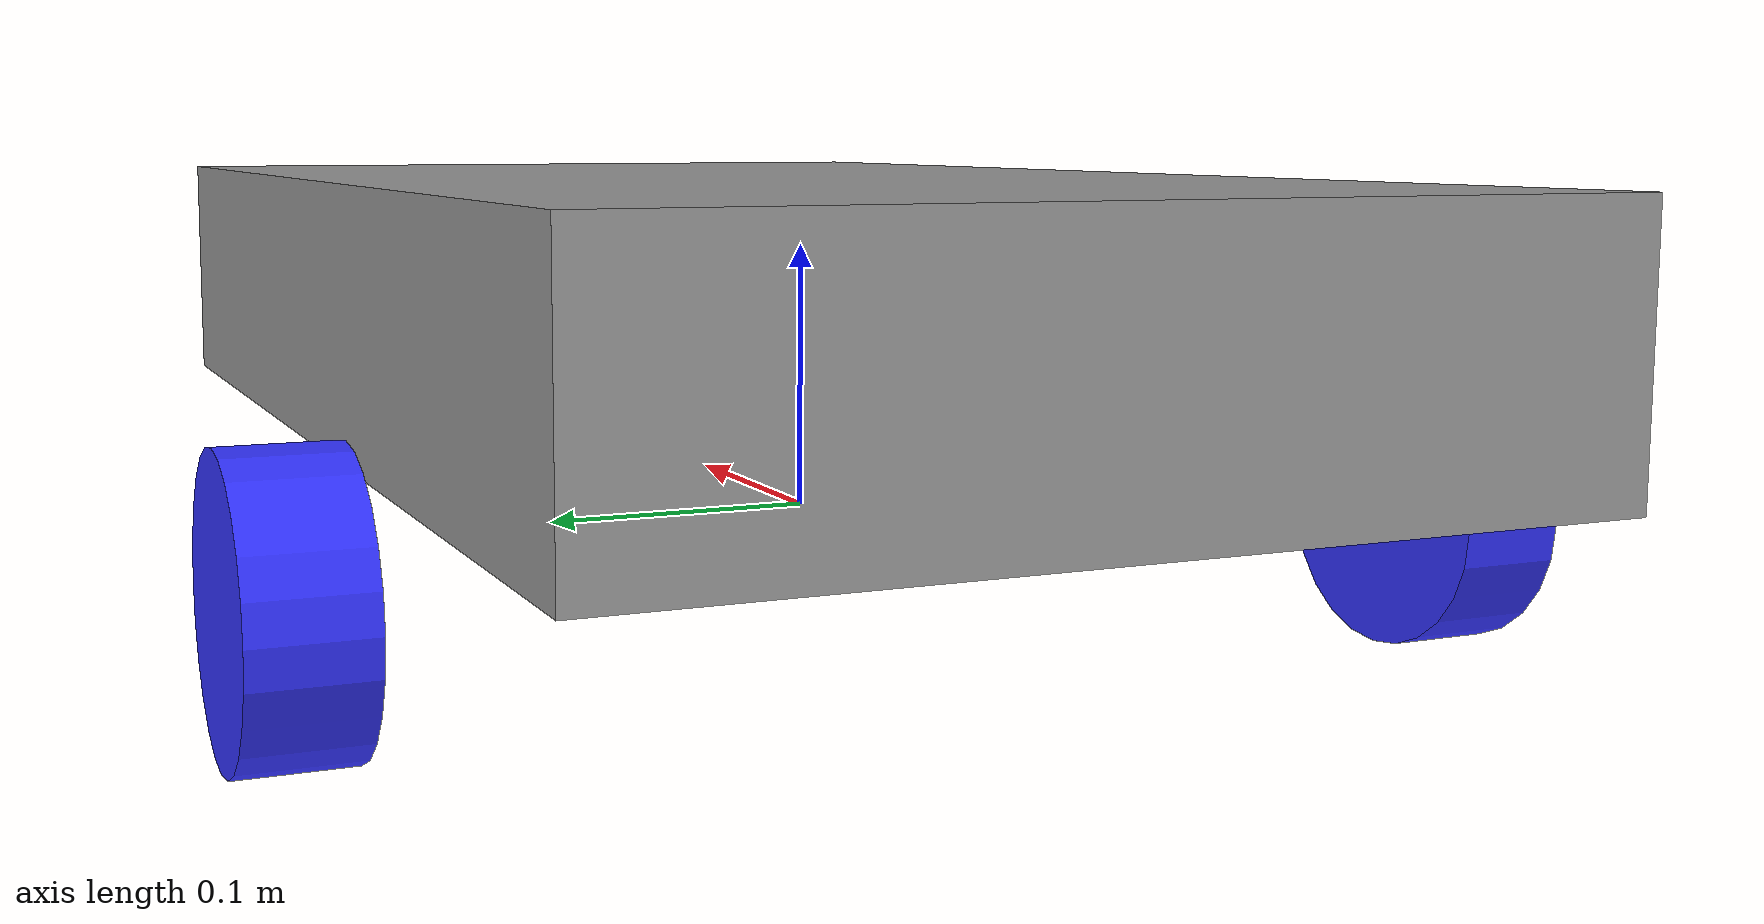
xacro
<?xml version="1.0"?>

<!-- Corpo base do robo, suas juntas e localização de sensores -->
<!-- Dimensões são em metros -->
<robot xmlns:xacro="http://www.ros.org/wiki/xacro">
    <xacro:include filename="materials.xacro"/>
    <xacro:include filename="inertials.xacro"/>

    <!-- Chassi -->
    <xacro:property name="chassi_x" value="0.6"/>
    <xacro:property name="chassi_y" value="0.35"/>
    <xacro:property name="chassi_z" value="0.1"/>
    <xacro:property name="chassi_massa" value="5.3"/>
    <xacro:property name="chassi_origem" value="0.15 0.0 0.075"/>
    <xacro:property name="chassi_joint_xyz" value="-0.1 0 0"/>

    <!-- Rodas trazeiras -->
    <xacro:property name="roda_raio" value="0.05"/>
    <xacro:property name="roda_comprimento" value="0.04"/>
    <xacro:property name="roda_massa" value="0.5"/>
    <xacro:property name="roda_y" value="0.215"/>
    <xacro:property name="roda_mu1" value="0.65"/>
    <xacro:property name="roda_mu2" value="0.65"/>

    <!-- Roda(as) de apio -->
    <xacro:property name="apoio_raio" value="0.05"/>
    <xacro:property name="apoio_massa" value="0.5"/>
    <xacro:property name="apoio_x" value="0.24"/>
    <xacro:property name="apoio_mu1" value="0.2"/>
    <xacro:property name="apoio_mu2" value="0.2"/>

    <link name="base_link"/>

    <!-- Chassi -->
    <joint name="junta_chassi" type="fixed">
        <parent link="base_link"/>
        <child link="chassi"/>
        <origin xyz="${chassi_joint_xyz}" rpy="0 0 0"/>
    </joint>

    <link name="chassi">
        <visual>
            <origin xyz="${chassi_origem}"/>
            <geometry>
                <box size="${chassi_x} ${chassi_y} ${chassi_z}"/>
            </geometry>
            <material name="gray"/>
        </visual>
        <collision>
            <origin xyz="${chassi_origem}"/>
            <geometry>
                <box size="${chassi_x} ${chassi_y} ${chassi_z}"/>
            </geometry>
        </collision>
        <xacro:inertial_box mass="${chassi_massa}" x="${chassi_x}" y="${chassi_y}" z="${chassi_z}">
            <origin xyz="${chassi_origem}" rpy="0 0 0"/>
        </xacro:inertial_box>
    </link>

    <!-- Roda Esquerda Traseira -->
    <joint name="roda_esquerda_joint" type="continuous">
        <parent link="chassi"/>
        <child link="roda_esquerda"/>
        <origin xyz="0 ${roda_y} 0" rpy="0 0 0"/>
        <axis xyz="0 1 0"/>
    </joint>

    <link name="roda_esquerda">
        <visual>
            <origin xyz="0 0 0" rpy="${pi/2} 0 0"/>
            <geometry><cylinder radius="${roda_raio}" length="${roda_comprimento}"/></geometry>
            <material name="blue"/>
        </visual>
        <collision>
            <origin xyz="0 0 0" rpy="${pi/2} 0 0"/>
            <geometry><cylinder radius="${roda_raio}" length="${roda_comprimento}"/></geometry>
        </collision>
        <xacro:inertial_cylinder mass="${roda_massa}" length="${roda_comprimento}" radius="${roda_raio}">
            <origin xyz="0 0 0" rpy="${pi/2} 0 0"/>
        </xacro:inertial_cylinder>
    </link>
    <gazebo reference="roda_esquerda">
        <mu1>${roda_mu1}</mu1>
        <mu2>${roda_mu2}</mu2>
    </gazebo>

    <!-- Roda Direita Traseira -->
    <joint name="roda_direita_joint" type="continuous">
        <parent link="chassi"/>
        <child link="roda_direita"/>
        <origin xyz="0 -${roda_y} 0" rpy="0 0 0"/>
        <axis xyz="0 1 0"/>
    </joint>

    <link name="roda_direita">
        <visual>
            <origin xyz="0 0 0" rpy="${pi/2} 0 0"/>
            <geometry><cylinder radius="${roda_raio}" length="${roda_comprimento}"/></geometry>
            <material name="blue"/>
        </visual>
        <collision>
            <origin xyz="0 0 0" rpy="${pi/2} 0 0"/>
            <geometry><cylinder radius="${roda_raio}" length="${roda_comprimento}"/></geometry>
        </collision>
        <xacro:inertial_cylinder mass="${roda_massa}" length="${roda_comprimento}" radius="${roda_raio}">
            <origin xyz="0 0 0" rpy="${pi/2} 0 0"/>
        </xacro:inertial_cylinder>
    </link>
    <gazebo reference="roda_direita">
        <mu1>${roda_mu1}</mu1>
        <mu2>${roda_mu2}</mu2>
    </gazebo>

    <!-- Rodas de Apoio -->
    <joint name="roda_frente_joint" type="fixed">
        <parent link="chassi"/>
        <child link="roda_frente"/>
        <origin xyz="${apoio_x} 0 0"/>
    </joint>

    <link name="roda_frente">

        <visual>
            <geometry>
                <sphere radius="${apoio_raio}"/>
            </geometry>
            <material name="black"/>
        </visual>

        <collision>
            <geometry>
                <sphere radius="${apoio_raio}"/>
            </geometry>
        </collision>

        <xacro:inertial_sphere mass="${apoio_massa}" radius="${apoio_raio}">
            <origin xyz="0 0 0" rpy="0 0 0"/>
        </xacro:inertial_sphere>

    </link>

    <gazebo reference="roda_frente">
        <self_collide>false</self_collide>
        <mu1>${apoio_mu1}</mu1>
        <mu2>${apoio_mu2}</mu2>
    </gazebo>

</robot>

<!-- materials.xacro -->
<!-- Cores para melhor visualização na simulação e no Rviz-->

<robot xmlns:xacro="http://www.ros.org/wiki/xacro">

    <material name="white">
        <color rgba="1 1 1 1"/>
    </material>

    <material name="blue">
        <color rgba="0.2 0.2 1 1"/>
    </material>

    <material name="black">
        <color rgba="0 0 0 1"/>
    </material>

    <material name="red">
        <color rgba="1 0.2 0.2 1"/>
    </material>

    <material name="gray">
        <color rgba="0.6 0.6 0.6 1"/>
    </material>

</robot>

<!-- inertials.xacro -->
<robot xmlns:xacro="http://www.ros.org/wiki/xacro" >

    <!-- Modelos obtidos pelo site https://en.wikipedia.org/wiki/List_of_moments_of_inertia -->

    <xacro:macro name="inertial_sphere" params="mass radius *origin">
        <inertial>
            <xacro:insert_block name="origin"/>
            <mass value="${mass}" />
            <inertia ixx="${(2/5) * mass * (radius*radius)}" ixy="0.0" ixz="0.0"
                    iyy="${(2/5) * mass * (radius*radius)}" iyz="0.0"
                    izz="${(2/5) * mass * (radius*radius)}" />
        </inertial>
    </xacro:macro>

    <xacro:macro name="inertial_box" params="mass x y z *origin">
        <inertial>
            <xacro:insert_block name="origin"/>
            <mass value="${mass}" />
            <inertia ixx="${(1/12) * mass * (y*y+z*z)}" ixy="0.0" ixz="0.0"
                    iyy="${(1/12) * mass * (x*x+z*z)}" iyz="0.0"
                    izz="${(1/12) * mass * (x*x+y*y)}" />
        </inertial>
    </xacro:macro>

    <xacro:macro name="inertial_cylinder" params="mass length radius *origin">
        <inertial>
            <xacro:insert_block name="origin"/>
            <mass value="${mass}" />
            <inertia ixx="${(1/12) * mass * (3*radius*radius + length*length)}" ixy="0.0" ixz="0.0"
                    iyy="${(1/12) * mass * (3*radius*radius + length*length)}" iyz="0.0"
                    izz="${(1/2) * mass * (radius*radius)}" />
        </inertial>
    </xacro:macro>
</robot>
